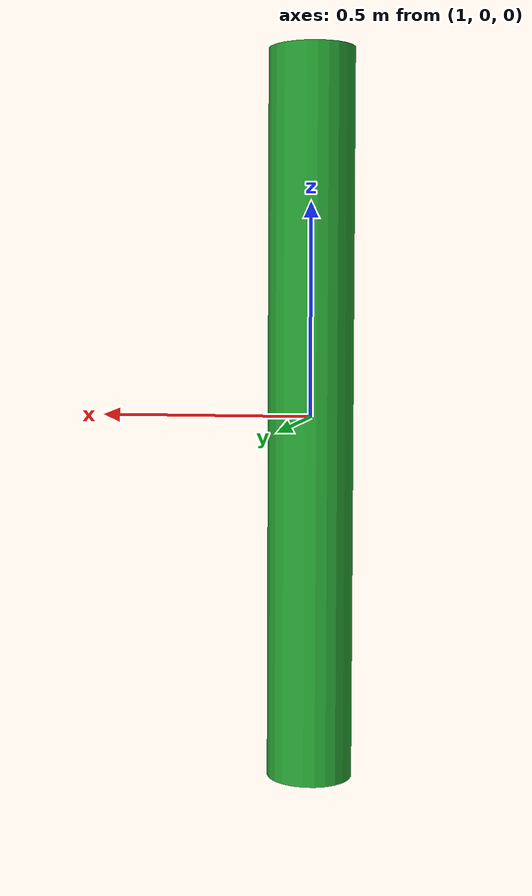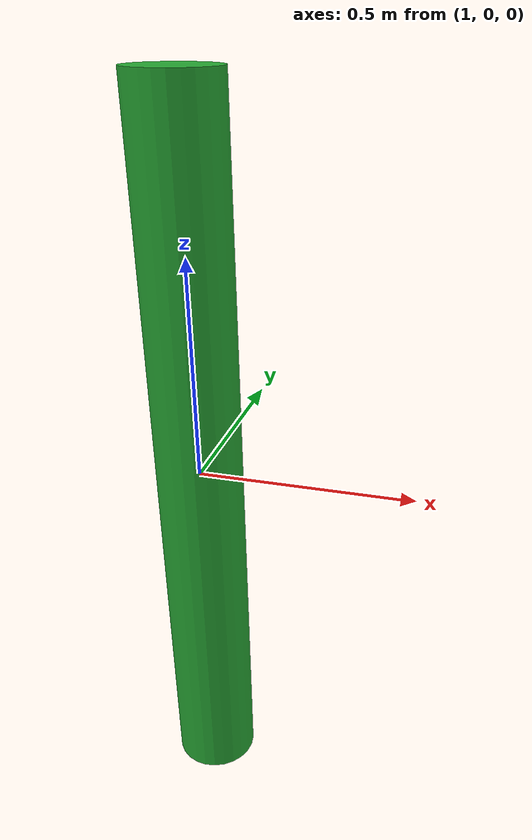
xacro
<?xml version="1.0"?>
<robot name="cylinder" xmlns:xacro="http://www.ros.org/wiki/xacro">

  <xacro:property name="humanRadius" value="0.1"/>
  <xacro:property name="humanHeight" value="1.7"/>
  <xacro:property name="humanMass" value="100"/>

  <xacro:include filename="$(find cylinder)/urdf/materials.xacro" />
  <xacro:include filename="$(find cylinder)/urdf/macros.xacro" />

  <link name="footprint"/>

  <joint name="base_joint" type="fixed">
    <parent link="footprint"/>
    <origin rpy="0 0 0" xyz="1 0 0"/>
    <child link="human"/>
  </joint>

  <link name='human'>
    <collision>
      <origin xyz="0 0 0" rpy="0 0 0"/>
      <geometry>
        <cylinder radius="${humanRadius}" length="${humanHeight}"/>
      </geometry>
    </collision>
    <visual>
      <origin xyz="0 0 0" rpy="0 0 0"/>
      <geometry>
        <cylinder radius="${humanRadius}" length="${humanHeight}"/>
      </geometry>
      <material name="green"/>
    </visual>
    <inertial>
      <origin xyz="0 0 0" rpy="0 0 0"/>
      <mass value="${humanMass}"/>
      <xacro:cylinder_inertia m="${humanMass}" r="${humanRadius}" h="${humanHeight}"/>
    </inertial>
  </link>

  <gazebo reference="human">
    <material>Gazebo/Green</material>
  </gazebo>

</robot>

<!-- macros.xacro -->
<robot xmlns:xacro="http://www.ros.org/wiki/xacro">
  <xacro:macro name="cylinder_inertia" params="m r h">
    <inertia  ixx="${m*(3*r*r+h*h)/12}" ixy = "0" ixz = "0" iyy="${m*(3*r*r+h*h)/12}" iyz = "0" izz="${m*r*r/2}"/>
  </xacro:macro>

  <xacro:macro name="box_inertia" params="m x y z">
    <inertia  ixx="${m*(y*y+z*z)/12}" ixy = "0" ixz = "0" iyy="${m*(x*x+z*z)/12}" iyz = "0" izz="${m*(x*x+z*z)/12}"/>
  </xacro:macro>

  <xacro:macro name="sphere_inertia" params="m r">
    <inertia  ixx="${2*m*r*r/5}" ixy = "0" ixz = "0" iyy="${2*m*r*r/5}" iyz = "0" izz="${2*m*r*r/5}"/>
  </xacro:macro>

</robot>
